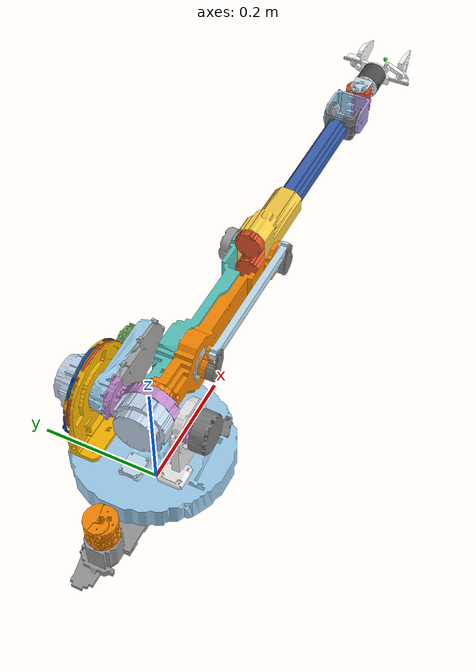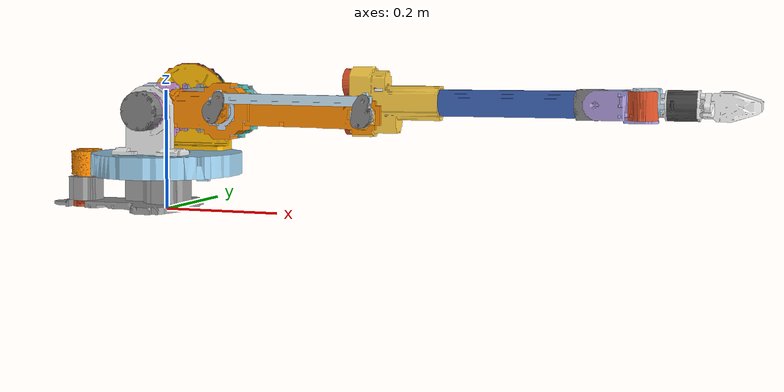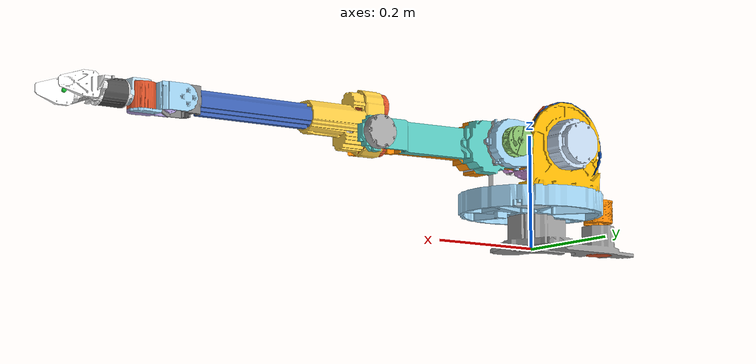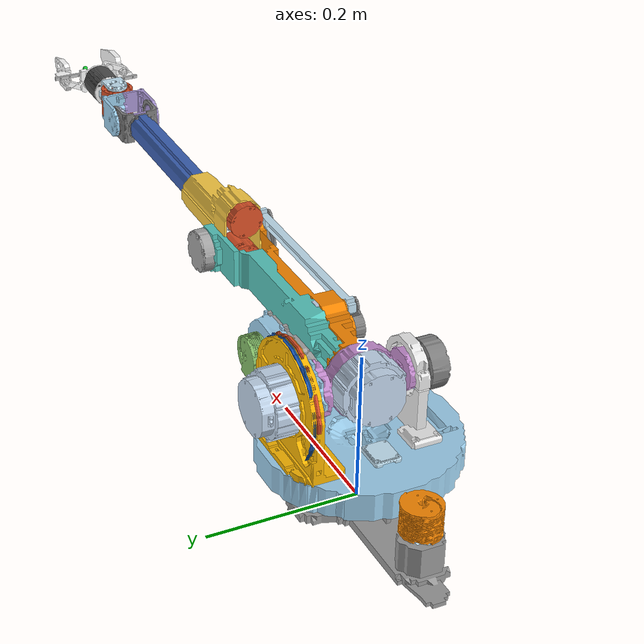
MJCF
<?xml version='1.0' encoding='utf-8'?>
<mujoco model="forte2_capsules">
  <compiler angle="radian" />
  <asset>
    <mesh name="A1_adapter" content_type="model/stl" file="../forte/meshes/A1_adapter.stl" />
    <mesh name="act_drum" content_type="model/stl" file="../forte/meshes/act_drum.stl" />
    <mesh name="Belt1" content_type="model/stl" file="../forte/meshes/Belt1.stl" />
    <mesh name="bottom_base" content_type="model/stl" file="../forte/meshes/bottom_base.stl" />
    <mesh name="bottomcable_cover" content_type="model/stl" file="../forte/meshes/bottomcable_cover.stl" />
    <mesh name="Cover_3DPrinting" content_type="model/stl" file="../forte/meshes/Cover_3DPrinting.stl" />
    <mesh name="EL05_merged" content_type="model/stl" file="../forte/meshes/EL05_merged.stl" />
    <mesh name="EL05_merged_1" content_type="model/stl" file="../forte/meshes/EL05_merged_1.stl" />
    <mesh name="ElbowLink" content_type="model/stl" file="../forte/meshes/ElbowLink.stl" />
    <mesh name="ElbowPCB_cover" content_type="model/stl" file="../forte/meshes/ElbowPCB_cover.stl" />
    <mesh name="HingeCover" content_type="model/stl" file="../forte/meshes/HingeCover.stl" />
    <mesh name="LeftColumn" content_type="model/stl" file="../forte/meshes/LeftColumn.stl" />
    <mesh name="LeftHinge" content_type="model/stl" file="../forte/meshes/LeftHinge.stl" />
    <mesh name="main_drum" content_type="model/stl" file="../forte/meshes/main_drum.stl" />
    <mesh name="Part_1_9" content_type="model/stl" file="../forte/meshes/Part_1_9.stl" />
    <mesh name="Part_2_5" content_type="model/stl" file="../forte/meshes/Part_2_5.stl" />
    <mesh name="Part_30_1" content_type="model/stl" file="../forte/meshes/Part_30_1.stl" />
    <mesh name="Part_41" content_type="model/stl" file="../forte/meshes/Part_41.stl" />
    <mesh name="Part_42" content_type="model/stl" file="../forte/meshes/Part_42.stl" />
    <mesh name="Part_46" content_type="model/stl" file="../forte/meshes/Part_46.stl" />
    <mesh name="Part_4_2" content_type="model/stl" file="../forte/meshes/Part_4_2.stl" />
    <mesh name="Part_56" content_type="model/stl" file="../forte/meshes/Part_56.stl" />
    <mesh name="Part_57" content_type="model/stl" file="../forte/meshes/Part_57.stl" />
    <mesh name="Part_58" content_type="model/stl" file="../forte/meshes/Part_58.stl" />
    <mesh name="Part_59" content_type="model/stl" file="../forte/meshes/Part_59.stl" />
    <mesh name="Part_5_2" content_type="model/stl" file="../forte/meshes/Part_5_2.stl" />
    <mesh name="Part_61" content_type="model/stl" file="../forte/meshes/Part_61.stl" />
    <mesh name="Part_62" content_type="model/stl" file="../forte/meshes/Part_62.stl" />
    <mesh name="Part_63" content_type="model/stl" file="../forte/meshes/Part_63.stl" />
    <mesh name="Part_64" content_type="model/stl" file="../forte/meshes/Part_64.stl" />
    <mesh name="Part_65" content_type="model/stl" file="../forte/meshes/Part_65.stl" />
    <mesh name="Part_66" content_type="model/stl" file="../forte/meshes/Part_66.stl" />
    <mesh name="Part_67" content_type="model/stl" file="../forte/meshes/Part_67.stl" />
    <mesh name="Part_6_3" content_type="model/stl" file="../forte/meshes/Part_6_3.stl" />
    <mesh name="Part_7_2" content_type="model/stl" file="../forte/meshes/Part_7_2.stl" />
    <mesh name="Part_8_2" content_type="model/stl" file="../forte/meshes/Part_8_2.stl" />
    <mesh name="RightColumn" content_type="model/stl" file="../forte/meshes/RightColumn.stl" />
    <mesh name="RS60_merged" content_type="model/stl" file="../forte/meshes/RS60_merged.stl" />
    <mesh name="ShoulderCable" content_type="model/stl" file="../forte/meshes/ShoulderCable.stl" />
    <mesh name="ShoulderCable1" content_type="model/stl" file="../forte/meshes/ShoulderCable1.stl" />
    <mesh name="ShoulderCable3" content_type="model/stl" file="../forte/meshes/ShoulderCable3.stl" />
    <mesh name="ShoulderCable4" content_type="model/stl" file="../forte/meshes/ShoulderCable4.stl" />
    <mesh name="ShoulderPitchActDrum" content_type="model/stl" file="../forte/meshes/ShoulderPitchActDrum.stl" />
    <mesh name="ShoulderRoll" content_type="model/stl" file="../forte/meshes/ShoulderRoll.stl" />
    <mesh name="ShoulderRollActAdapter" content_type="model/stl" file="../forte/meshes/ShoulderRollActAdapter.stl" />
    <mesh name="Spiral_Gear_2" content_type="model/stl" file="../forte/meshes/Spiral_Gear_2.stl" />
    <mesh name="Spur_gear__40_teeth_" content_type="model/stl" file="../forte/meshes/Spur_gear__40_teeth_.stl" />
    <mesh name="Spur_gear__40_teeth__2" content_type="model/stl" file="../forte/meshes/Spur_gear__40_teeth__2.stl" />
    <mesh name="turntable_cap" content_type="model/stl" file="../forte/meshes/turntable_cap.stl" />
    <mesh name="UpperArmLeft" content_type="model/stl" file="../forte/meshes/UpperArmLeft.stl" />
    <mesh name="UpperArmRight" content_type="model/stl" file="../forte/meshes/UpperArmRight.stl" />
  </asset>
  <worldbody>
    <body name="base_link" pos="0 0 0.058">
      <inertial mass="0.92840110973" pos="-0.0708791816247 0.000700792048333 -0.0336258609993" fullinertia="0.00146554048755 0.00583170866928 0.00621101635307 5.55600319594e-05 0.000573200441217 1.31003653894e-05" />
      <geom type="mesh" contype="0" conaffinity="0" group="1" rgba="0.6 0.6 0.6 1" density="0" mesh="bottom_base" />
      <geom pos="-0.157643 0.0126324 0.02575" quat="9.38184e-07 0.707105 0.707108 9.38187e-07" type="mesh" contype="0" conaffinity="0" group="1" rgba="0.866667 0.321569 0.156863 1" density="0" mesh="EL05_merged" />
      <geom pos="-0.28677 -0.0780272 -5.38113e-07" quat="0.262545 1.62859e-06 9.31914e-07 -0.96492" type="mesh" contype="0" conaffinity="0" group="1" rgba="0.768627 0.886275 0.952941 1" density="0" mesh="A1_adapter" />
      <geom pos="-0.001932 -0.0243169 0" quat="0.996859 0 0 -0.0792" type="mesh" contype="0" conaffinity="0" group="1" rgba="0.972549 0.529412 0.00392157 1" density="0" mesh="act_drum" />
      <body name="main_drum" pos="0 0 -0.001" quat="1 0 0 -1.86094195609e-13">
        <inertial mass="3.56513809637" pos="0.00546600876412 0.0176966974925 0.041268665854" fullinertia="0.0236783152368 0.0168314532973 0.0282237033839 -0.000586474111394 0.000507881355346 -0.00384634520163" />
        <joint name="shoulder_yaw" range="-0.174532925199 0.174532925199" axis="0 0 -1" armature="0.01" damping="0.05" />
        <geom pos="0 0 0.001" quat="1 0 0 0" type="mesh" contype="0" conaffinity="0" group="1" rgba="0.615686 0.811765 0.929412 1" density="0" mesh="main_drum" />
        <geom pos="0 0 0.001" quat="1 0 0 0" type="mesh" contype="0" conaffinity="0" group="1" rgba="0.917647 0.917647 0.917647 1" density="0" mesh="RightColumn" />
        <geom pos="1e-08 -3.5e-08 0.001" quat="1 0 0 0" type="mesh" contype="0" conaffinity="0" group="1" rgba="0.498039 0.498039 0.498039 1" density="0" mesh="Part_41" />
        <geom pos="0 0 0.001" quat="1 0 0 0" type="mesh" contype="0" conaffinity="0" group="1" rgba="0.917647 0.917647 0.917647 1" density="0" mesh="turntable_cap" />
        <geom pos="0 0 0.0025" quat="1 0 0 0" type="mesh" contype="0" conaffinity="0" group="1" rgba="0.768627 0.886275 0.952941 1" density="0" mesh="bottomcable_cover" />
        <geom pos="0 0 0.001" quat="1 0 0 0" type="mesh" contype="0" conaffinity="0" group="1" rgba="0.768627 0.886275 0.952941 1" density="0" mesh="Part_42" />
        <geom pos="0 0 0.001" quat="1 0 0 0" type="mesh" contype="0" conaffinity="0" group="1" rgba="0.980392 0.713726 0.00392157 1" density="0" mesh="LeftColumn" />
        <geom pos="0 0.0939999 0.112" quat="-0.499999 0.500001 -0.500001 -0.499999" type="mesh" contype="0" conaffinity="0" group="1" rgba="0.760784 0.839216 0.92549 1" density="0" mesh="RS60_merged" />
        <geom pos="0 0 0.001" quat="1 0 0 0" type="mesh" contype="0" conaffinity="0" group="1" rgba="0.0862745 0.317647 0.690196 1" density="0" mesh="ShoulderCable3" />
        <geom pos="0 0 0.001" quat="1 0 0 0" type="mesh" contype="0" conaffinity="0" group="1" rgba="0.0862745 0.321569 0.580392 1" density="0" mesh="ShoulderCable4" />
        <geom pos="0 0 0.001" quat="1 0 0 0" type="mesh" contype="0" conaffinity="0" group="1" rgba="0.729412 0.25098 0.105882 1" density="0" mesh="ShoulderCable" />
        <geom pos="0 0 0.001" quat="1 0 0 0" type="mesh" contype="0" conaffinity="0" group="1" rgba="0.866667 0.321569 0.156863 1" density="0" mesh="ShoulderCable1" />
        <geom pos="0 0 -0.0005" quat="1 0 0 0" type="mesh" contype="0" conaffinity="0" group="1" rgba="0.498039 0.498039 0.498039 1" density="0" mesh="Cover_3DPrinting" />
        <body name="lefthinge" pos="0 0.084 0.112" quat="0.831437203737 0 0.555618732803 0">
          <inertial mass="0.726164158014" pos="0.00724891915666 -0.0645294234019 0.0165178297297" fullinertia="0.00274835943481 0.00185169745918 0.00210910120665 -0.000333889801309 -0.000185074789923 -0.000775671768736" />
          <joint name="shoulder_pitch" range="-3.15904594611 0" axis="0 1 0" armature="0.01" damping="0.05" />
          <geom pos="0.102122 -0.084 -0.0434979" quat="0.834228 0 -0.55142 0" type="mesh" contype="0" conaffinity="0" group="1" rgba="0.615686 0.811765 0.929412 1" density="0" mesh="LeftHinge" />
          <geom pos="0.102123 -0.084 -0.043498" quat="0.834228 0 -0.55142 0" type="mesh" contype="0" conaffinity="0" group="1" rgba="0.764706 0.545098 0.803922 1" density="0" mesh="ShoulderRoll" />
          <geom pos="0.000195962 -0.084 0.000460017" quat="1.29999e-06 -0.979801 2.65329e-07 0.199974" type="mesh" contype="0" conaffinity="0" group="1" rgba="0.760784 0.839216 0.92549 1" density="0" mesh="RS60_merged" />
          <geom pos="0.0884324 -0.139505 -0.0376671" quat="-0.805803 0.215912 0.53263 0.142719" type="mesh" contype="0" conaffinity="0" group="1" rgba="0.768627 0.886275 0.952941 1" density="0" mesh="ShoulderRollActAdapter" />
          <geom pos="0.0883148 -0.139505 -0.0379431" quat="-0.805803 0.215912 0.53263 0.142719" type="mesh" contype="0" conaffinity="0" group="1" rgba="0.972549 0.529412 0.00392157 1" density="0" mesh="Part_46" />
          <geom pos="-0.066875 -0.0840003 0.200186" quat="0.69287 -6.55325e-07 0.721062 2.39593e-06" type="mesh" contype="0" conaffinity="0" group="1" rgba="0.513726 0.737255 0.407843 1" density="0" mesh="ShoulderPitchActDrum" />
          <geom pos="0.102122 -0.084 -0.0434977" quat="0.834228 0 -0.55142 0" type="mesh" contype="0" conaffinity="0" group="1" rgba="0.647059 0.647059 0.647059 1" density="0" mesh="HingeCover" />
          <geom pos="0.102122 -0.084 -0.0434979" quat="0.834228 0 -0.55142 0" type="mesh" contype="0" conaffinity="0" group="1" rgba="0.501961 0.501961 0.501961 1" density="0" mesh="Belt1" />
          <geom pos="-0.066875 -0.0840004 0.200185" quat="0.692871 3.01379e-07 0.721061 1.47664e-06" type="mesh" contype="0" conaffinity="0" group="1" rgba="0.231373 0.380392 0.705882 1" density="0" mesh="Part_30_1" />
          <body name="upperarmright" pos="0.00841726 -0.0840051 0.0197838" quat="-0.834058560602 0.0168183271942 0.551307373056 0.0111194321597">
            <inertial mass="0.798344812502" pos="0.138826233574 -0.000126225277861 -0.000116322208096" fullinertia="0.000715199252863 0.00861208668287 0.00856572707534 -0.000192239515194 4.47592126967e-06 4.7596435012e-06" />
            <joint name="shoulder_roll" range="-2.61799387799 2.09439510239" axis="-1 0 0" armature="0.01" damping="0.05" />
            <geom pos="-0.0215 0.00447502 -0.11091" quat="0.999797 0.0201618 0 0" type="mesh" contype="0" conaffinity="0" group="1" rgba="0.972549 0.529412 0.00392157 1" density="0" mesh="UpperArmRight" />
            <geom pos="-0.0215 0.00447502 -0.11091" quat="0.999797 0.0201618 0 0" type="mesh" contype="0" conaffinity="0" group="1" rgba="0.341176 0.776471 0.741176 1" density="0" mesh="UpperArmLeft" />
            <geom pos="-0.0215 0.00447502 -0.11091" quat="0.999797 0.0201618 0 0" type="mesh" contype="0" conaffinity="0" group="1" rgba="0.647059 0.647059 0.647059 1" density="0" mesh="ElbowPCB_cover" />
            <geom pos="0.09 -0.0264785 -0.0010684" quat="0.509978 -0.489818 0.489817 0.50998" type="mesh" contype="0" conaffinity="0" group="1" rgba="0.760784 0.839216 0.92549 1" density="0" mesh="RS60_merged" />
            <geom pos="-0.0142995 -0.00474973 0.117696" quat="0.686009 0.013834 0.727313 0.0146696" type="mesh" contype="0" conaffinity="0" group="1" rgba="0.972549 0.529412 0.00392157 1" density="0" mesh="Part_65" />
            <geom pos="-0.0142992 -0.00474976 0.117696" quat="0.686009 0.013834 0.727313 0.0146696" type="mesh" contype="0" conaffinity="0" group="1" rgba="0.498039 0.498039 0.498039 1" density="0" mesh="Part_66" />
            <geom pos="0.0105176 0.00377915 -0.0936648" quat="-0.999797 -0.0201609 1.80081e-06 -1.87894e-06" type="mesh" contype="0" conaffinity="0" group="1" rgba="0.768627 0.886275 0.952941 1" density="0" mesh="Part_64" />
            <geom pos="0.233323 0.0145869 -0.361449" quat="-0.880083 -0.0177524 0.474392 0.00956581" type="mesh" contype="0" conaffinity="0" group="1" rgba="0.917647 0.917647 0.917647 1" density="0" mesh="Part_63" />
            <geom pos="0.233323 0.0145869 -0.361449" quat="-0.880083 -0.0177524 0.474392 0.00956581" type="mesh" contype="0" conaffinity="0" group="1" rgba="0.498039 0.498039 0.498039 1" density="0" mesh="Part_67" />
            <body name="elbowlink" pos="0.3385 -0.0264785 -0.00106836" quat="0.99978404626 0.0201603133518 -0.00504109587078 -9.98136078394e-05">
              <inertial mass="0.490588704032" pos="0.0246328957059 0.0264380080532 0.0167296684128" fullinertia="0.000540367706562 0.00126697325808 0.00102464639929 -7.99104940883e-07 -9.55938815392e-06 -3.30425780621e-07" />
              <joint name="elbow_pitch" axis="0 -1 0" armature="0.01" damping="0.05" />
              <geom pos="-0.36 0.0265 -0.111" quat="1 0 0 0" type="mesh" contype="0" conaffinity="0" group="1" rgba="0.980392 0.796078 0.262745 1" density="0" mesh="ElbowLink" />
              <geom pos="0.04675 0.0279692 0.0630647" quat="0.69352 -0.137949 -0.693521 0.137949" type="mesh" contype="0" conaffinity="0" group="1" rgba="0.866667 0.321569 0.156863 1" density="0" mesh="EL05_merged" />
              <geom pos="0.04875 0.0250304 -0.0230645" quat="0.137946 0.69352 -0.137951 -0.69352" type="mesh" contype="0" conaffinity="0" group="1" rgba="0.866667 0.321569 0.156863 1" density="0" mesh="EL05_merged" />
              <geom pos="-0.340002 -0.122216 0.0516732" quat="-0.555573 0.831468 -3.5678e-06 4.07452e-06" type="mesh" contype="0" conaffinity="0" group="1" rgba="0.501961 0.501961 0.501961 1" density="0" mesh="Part_56" />
              <body name="spur_gear__40_teeth_" pos="0.047 0.0265 0.02" quat="-0.472193626548 -0.526338161745 0.472191846063 0.526342264169">
                <inertial mass="0.581584356315" pos="-2.3715762974e-05 -4.5931594948e-05 -0.179386989443" fullinertia="0.00530148588194 0.00531310896832 0.000154065154589 -1.31622380589e-06 -2.93152931766e-06 1.36436659234e-06" />
                <joint name="lower_arm_roll" axis="0 0 -1" armature="0.01" damping="0.05" />
                <geom pos="0.0298241 0.00324411 0.0015" quat="0.744357 0 0 -0.667782" type="mesh" contype="0" conaffinity="0" group="1" rgba="0.917647 0.917647 0.917647 1" density="0" mesh="Spur_gear__40_teeth_" />
                <geom pos="0.0141658 -0.130231 0.407001" quat="-0.472192 0.526341 -0.472193 -0.526339" type="mesh" contype="0" conaffinity="0" group="1" rgba="0.231373 0.380392 0.705882 1" density="0" mesh="Part_57" />
                <geom pos="0.0141658 -0.13023 0.407001" quat="-0.472192 0.526341 -0.472193 -0.526339" type="mesh" contype="0" conaffinity="0" group="1" rgba="0.498039 0.498039 0.498039 1" density="0" mesh="Part_58" />
                <geom pos="0.116906 -0.0591082 0.407" quat="0.164 -0.687826 0.164003 0.687825" type="mesh" contype="0" conaffinity="0" group="1" rgba="0.980392 0.713726 0.00392157 1" density="0" mesh="Part_59" />
                <geom pos="0.062469 -0.0315853 0.0194997" quat="-0.523823 3.40862e-06 -6.92366e-07 0.851827" type="mesh" contype="0" conaffinity="0" group="1" rgba="0.917647 0.917647 0.917647 1" density="0" mesh="Spur_gear__40_teeth__2" />
                <body name="spiral_gear_2" pos="-0.0223679 -0.00243427 -0.32" quat="-0.713650323317 -0.189827514966 -0.211596776767 0.640230844816">
                  <inertial mass="0.208852414626" pos="0.0238151718086 0.0228958888847 -0.0341179757091" fullinertia="0.000216625074956 0.000220649219125 0.000176375065336 2.95863518572e-06 6.15779823244e-05 -3.85152093854e-06" />
                  <joint name="wrist_pitch" axis="0 -1 0" armature="0.01" damping="0.05" />
                  <geom pos="-0.0708603 0.0025 0.10899" quat="0.878942 0 0.476928 0" type="mesh" contype="0" conaffinity="0" group="1" rgba="0.796078 0.823529 0.937255 1" density="0" mesh="Spiral_Gear_2" />
                  <geom pos="-0.286444 0.0224997 0.680911" quat="1.16618e-06 -0.878942 6.32786e-07 0.476928" type="mesh" contype="0" conaffinity="0" group="1" rgba="0.615686 0.811765 0.929412 1" density="0" mesh="Part_61" />
                  <geom pos="-0.286444 0.0224997 0.680911" quat="1.16618e-06 -0.878942 6.32786e-07 0.476928" type="mesh" contype="0" conaffinity="0" group="1" rgba="0.654902 0.584314 0.823529 1" density="0" mesh="Part_62" />
                  <geom pos="-0.00909729 0.013493 -0.097459" quat="0.852834 -0.115379 0.462762 -0.212635" type="mesh" contype="0" conaffinity="0" group="1" rgba="0.866667 0.321569 0.156863 1" density="0" mesh="EL05_merged" />
                  <body name="part_8_2" pos="0.0190809 0.0226394 -0.0678746" quat="-0.285399541384 0.70419691689 0.525972148797 -0.382108757699">
                    <inertial mass="0.117080480703" pos="0.0154651522405 0.0519123047864 -0.0184250613291" fullinertia="8.85712685371e-05 4.75991793214e-05 9.08277136651e-05 -1.26462603016e-05 2.06699055103e-06 1.16355438662e-05" />
                    <joint name="wrist_roll" axis="0 0 -1" armature="0.01" damping="0.05" />
                    <geom pos="0.023433 0.123685 -0.0173578" quat="0.801187 0 0 0.598414" type="mesh" contype="0" conaffinity="0" group="1" rgba="0.768627 0.886275 0.952941 1" density="0" mesh="Part_8_2" />
                    <geom pos="0.0376195 0.114272 -0.0083676" quat="0.801187 0 0 0.598414" type="mesh" contype="0" conaffinity="0" group="1" rgba="0.917647 0.917647 0.917647 1" density="0" mesh="Part_2_5" />
                    <geom pos="0.022014 0.118891 -0.0173579" quat="0.566524 -0.566526 -0.423143 0.423142" type="mesh" contype="0" conaffinity="0" group="1" rgba="0.301961 0.301961 0.301961 1" density="0" mesh="EL05_merged_1" />
                    <geom pos="0.0376194 0.114272 -0.00836773" quat="0.801187 0 0 0.598414" type="mesh" contype="0" conaffinity="0" group="1" rgba="1 1 1 1" density="0" mesh="Part_4_2" />
                    <geom pos="0.0461988 0.111733 -0.017212" quat="0.703528 0.383339 0.286319 0.525472" type="mesh" contype="0" conaffinity="0" group="1" rgba="1 1 1 1" density="0" mesh="Part_5_2" />
                    <geom pos="0.0561891 0.0798359 -0.0292911" quat="-0.778351 0.189931 0.141858 -0.581354" type="mesh" contype="0" conaffinity="0" group="1" rgba="1 1 1 1" density="0" mesh="Part_6_3" />
                    <geom pos="-0.00368604 0.0975575 -0.0127091" quat="0.189931 0.77835 0.581354 0.141859" type="mesh" contype="0" conaffinity="0" group="1" rgba="1 1 1 1" density="0" mesh="Part_6_3" />
                    <body name="part_1_35" pos="0.0890438 0.0658364 -0.0310003" quat="-5.26666e-07 0.989668 -0.14338 -3.63525e-06">
                      <inertial mass="0.0406918624958" pos="-0.0243710489653 -0.0348702163403 -0.00925924919913" fullinertia="1.91083887711e-05 5.85671599913e-06 1.48505463967e-05 -1.69955927714e-06 -3.37939224658e-07 -8.01769760679e-07" />
                      <joint name="gripper_left_joint" type="slide" range="-0.037 0" axis="1 0 0" />
                      <geom pos="-0.06 -0.0037 0" quat="1 0 0 0" type="mesh" contype="0" conaffinity="0" group="1" rgba="0.752941 0.752941 0.752941 1" density="0" mesh="Part_1_9" />
                      <geom pos="-0.0375 -0.00459989 -0.00999992" quat="9.38184e-07 0.707105 -0.707108 -9.38187e-07" type="mesh" contype="0" conaffinity="0" group="1" rgba="1 1 1 1" density="0" mesh="Part_7_2" />
                      <geom pos="-0.0595 -0.0037 0" quat="1 0 0 0" type="mesh" contype="1" conaffinity="1" group="3" rgba="0.4 0.4 0.45 0.3" density="0" mesh="Part_1_9" name="part_1_35_collision_0" />
                      <geom pos="-0.037 -0.00459989 -0.00999992" quat="9.38184e-07 0.707105 -0.707108 -9.38187e-07" type="mesh" contype="1" conaffinity="1" group="3" rgba="0.4 0.4 0.45 0.3" density="0" mesh="Part_7_2" name="part_1_35_collision_1" />
                      <geom name="gripper_left_pad" type="box" pos="-0.027 -0.044 -0.010106" quat="0.305268 0.952267 0 0" size="0.002 0.015 0.01" rgba="0.12 0.12 0.13 0.85" friction="1 0.05 0.001" group="3" condim="4" priority="1" solref="0.006 1" solimp="0.995 0.999 0.001" />
                    </body>
                    <body name="part_1_40" pos="-0.0388679 0.103694 -0.0109999" quat="5.26674e-07 -0.989667 0.143383 3.63525e-06">
                      <inertial mass="0.0406918624958" pos="0.0243707954071 -0.0348703402771 0.00925929395903" fullinertia="1.91084155463e-05 5.8566910282e-06 1.48505446128e-05 1.69945979196e-06 -3.37922036412e-07 8.01776765294e-07" />
                      <joint name="gripper_right_joint" type="slide" range="-0.037 0" axis="-1 0 0" />
                      <geom pos="0 -0.0037 0" quat="1 0 0 0" type="mesh" contype="0" conaffinity="0" group="1" rgba="0.752941 0.752941 0.752941 1" density="0" mesh="Part_1_9" />
                      <geom pos="0.0375 -0.00460011 0.01" quat="0.707105 0 0 -0.707108" type="mesh" contype="0" conaffinity="0" group="1" rgba="1 1 1 1" density="0" mesh="Part_7_2" />
                      <geom pos="-0.0005 -0.0037 0" quat="1 0 0 0" type="mesh" contype="1" conaffinity="1" group="3" rgba="0.4 0.4 0.45 0.3" density="0" mesh="Part_1_9" name="part_1_40_collision_0" />
                      <geom pos="0.037 -0.00460011 0.01" quat="0.707105 0 0 -0.707108" type="mesh" contype="1" conaffinity="1" group="3" rgba="0.4 0.4 0.45 0.3" density="0" mesh="Part_7_2" name="part_1_40_collision_1" />
                      <geom name="gripper_right_pad" type="box" pos="0.027 -0.044 0.010106" quat="0.305268 0.952267 0 0" size="0.002 0.015 0.01" rgba="0.12 0.12 0.13 0.85" friction="1 0.05 0.001" group="3" condim="4" priority="1" solref="0.006 1" solimp="0.995 0.999 0.001" />
                    </body>
                    <geom pos="0.023433 0.123685 -0.0173578" quat="0.801187 0 0 0.598414" type="mesh" contype="1" conaffinity="1" group="3" rgba="0.4 0.4 0.45 0.3" density="0" mesh="Part_8_2" name="part_8_2_collision_0" />
                    <geom pos="0.0376195 0.114272 -0.0083676" quat="0.801187 0 0 0.598414" type="mesh" contype="1" conaffinity="1" group="3" rgba="0.4 0.4 0.45 0.3" density="0" mesh="Part_2_5" name="part_8_2_collision_1" />
                    <geom pos="0.022014 0.118891 -0.0173579" quat="0.566524 -0.566526 -0.423143 0.423142" type="mesh" contype="1" conaffinity="1" group="3" rgba="0.4 0.4 0.45 0.3" density="0" mesh="EL05_merged_1" name="part_8_2_collision_2" />
                    <geom pos="0.0376194 0.114272 -0.00836773" quat="0.801187 0 0 0.598414" type="mesh" contype="1" conaffinity="1" group="3" rgba="0.4 0.4 0.45 0.3" density="0" mesh="Part_4_2" name="part_8_2_collision_3" />
                    <geom pos="0.0461988 0.111733 -0.017212" quat="0.703528 0.383339 0.286319 0.525472" type="mesh" contype="1" conaffinity="1" group="3" rgba="0.4 0.4 0.45 0.3" density="0" mesh="Part_5_2" name="part_8_2_collision_4" />
                    <geom pos="0.0561891 0.0798359 -0.0292911" quat="-0.778351 0.189931 0.141858 -0.581354" type="mesh" contype="1" conaffinity="1" group="3" rgba="0.4 0.4 0.45 0.3" density="0" mesh="Part_6_3" name="part_8_2_collision_5" />
                    <geom pos="-0.00368604 0.0975575 -0.0127091" quat="0.189931 0.77835 0.581354 0.141859" type="mesh" contype="1" conaffinity="1" group="3" rgba="0.4 0.4 0.45 0.3" density="0" mesh="Part_6_3" name="part_8_2_collision_6" />
                    <site name="grasp" pos="0.0398841241051 0.134757709764 -0.0268140270887" quat="0.699803114456 -0.699798319784 0.101384245058 -0.101386130611" size="0.004" rgba="0.1 0.8 0.2 1" />
                  </body>
                  <geom name="wrist_link_capsule" type="capsule" fromto="0.025043318893 0.0225000477389 -0.0273668806609 0.025043318893 0.0225000477389 -0.0125626538803" size="0.06" contype="1" conaffinity="1" density="0" group="3" rgba="1 0 0 0.3" />
                  <geom name="wrist_motor_capsule" type="capsule" fromto="0.0375493928121 0.0226393303819 -0.0563492219195 0.0375493928121 0.0226393303819 -0.0553492219195" size="0.045" contype="1" conaffinity="1" density="0" group="3" rgba="1 0 0 0.3" />
                </body>
                <geom name="forearm_end_capsule" type="capsule" fromto="1.50176337032e-06 -2.80051189528e-07 -0.324029034183 1.50176337032e-06 -2.80051189528e-07 -0.307560191316" size="0.04" contype="1" conaffinity="1" density="0" group="3" rgba="1 0 0 0.3" />
                <geom name="forearm_tube_capsule" type="capsule" fromto="0 0 0.03 0 0 -0.2665" size="0.025" contype="1" conaffinity="1" density="0" group="3" rgba="1 0 0 0.3" />
              </body>
              <geom name="elbow_capsule" type="capsule" fromto="0.0118246688427 0.0285000002866 0.0199812957872 0.0549319243171 0.0285000002866 0.0199812957872" size="0.075" contype="1" conaffinity="1" density="0" group="3" rgba="1 0 0 0.3" />
            </body>
            <geom name="upper_arm_capsule" type="capsule" fromto="0.0643924673826 0.00159432342896 -4.95390517389e-05 0.319535602382 0.00159432342896 -4.95390517389e-05" size="0.075" contype="1" conaffinity="1" density="0" group="3" rgba="1 0 0 0.3" />
            <geom name="shoulder_cylinder" type="cylinder" fromto="-0.0730000984238 0 0 0.129699807855 0 0" size="0.115" contype="1" conaffinity="1" density="0" group="3" rgba="1 0 0 0.3" />
          </body>
        </body>
      </body>
      <geom type="mesh" contype="1" conaffinity="1" group="3" rgba="0.4 0.4 0.45 0.3" density="0" mesh="bottom_base" name="base_link_collision_0" pos="0 0 0.0001" />
      <geom pos="-0.157643 0.0126324 0.02585" quat="9.38184e-07 0.707105 0.707108 9.38187e-07" type="mesh" contype="1" conaffinity="1" group="3" rgba="0.4 0.4 0.45 0.3" density="0" mesh="EL05_merged" name="base_link_collision_1" />
      <geom pos="-0.001932 -0.0243169 0.0001" quat="0.996859 0 0 -0.0792" type="mesh" contype="1" conaffinity="1" group="3" rgba="0.4 0.4 0.45 0.3" density="0" mesh="act_drum" name="base_link_collision_2" />
      <geom name="base_drum_cylinder" type="cylinder" fromto="0 0 -0.0430000009566 0 0 0.188890007584" size="0.15" contype="1" conaffinity="1" density="0" group="3" rgba="1 0 0 0.3" />
    </body>
  </worldbody>
  <option timestep="0.002" integrator="implicitfast" />
  <contact>
    <exclude body1="base_link" body2="main_drum" />
    <exclude body1="main_drum" body2="lefthinge" />
    <exclude body1="lefthinge" body2="upperarmright" />
    <exclude body1="upperarmright" body2="elbowlink" />
    <exclude body1="elbowlink" body2="spur_gear__40_teeth_" />
    <exclude body1="spur_gear__40_teeth_" body2="spiral_gear_2" />
    <exclude body1="spiral_gear_2" body2="part_8_2" />
    <!-- Ignore proxy overlaps around the shoulder and elbow joints. -->
    <exclude body1="base_link" body2="upperarmright" />
    <exclude body1="upperarmright" body2="spur_gear__40_teeth_" />
  </contact>
  <equality>
    <joint name="gripper_parallel" joint1="gripper_left_joint" joint2="gripper_right_joint" polycoef="0 1 0 0 0" solref="0.004 1" solimp="0.99 0.999 0.001" />
  </equality>
  <actuator>
    <motor name="shoulder_yaw_motor" joint="shoulder_yaw" gear="1" ctrlrange="-87 87" />
    <motor name="shoulder_pitch_motor" joint="shoulder_pitch" gear="1" ctrlrange="-87 87" />
    <motor name="shoulder_roll_motor" joint="shoulder_roll" gear="1" ctrlrange="-87 87" />
    <motor name="elbow_pitch_motor" joint="elbow_pitch" gear="1" ctrlrange="-87 87" />
    <motor name="lower_arm_roll_motor" joint="lower_arm_roll" gear="1" ctrlrange="-87 87" />
    <motor name="wrist_pitch_motor" joint="wrist_pitch" gear="1" ctrlrange="-12 12" />
    <motor name="wrist_roll_motor" joint="wrist_roll" gear="1" ctrlrange="-12 12" />
    <position name="gripper_motor" joint="gripper_left_joint" kp="2000" kv="5" ctrlrange="-0.037 0" forcerange="-20 20" />
  </actuator>
  <keyframe>
    <key name="zero" qpos="0 0 0 0 0 0 0 0 0" />
    <key name="home" qpos="0 -1.57079632679 0 -1.57079632679 0 1.57079632679 0 0 0" />
  </keyframe>
</mujoco>
